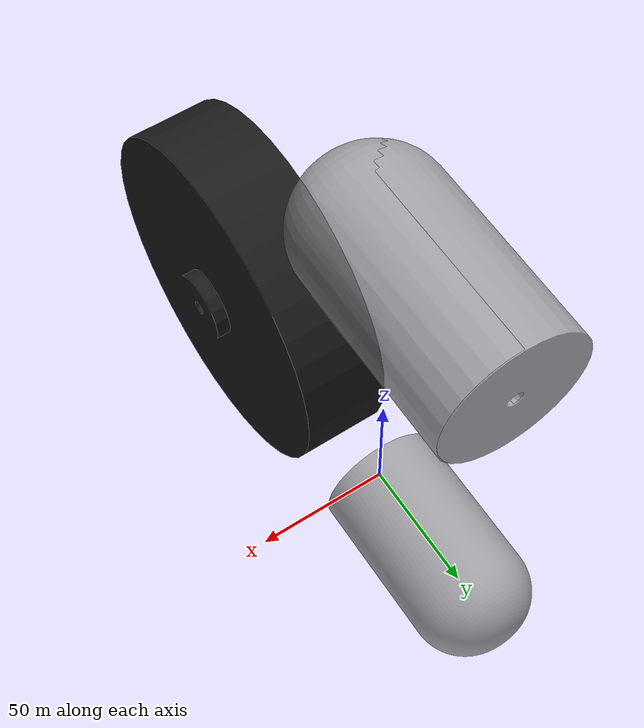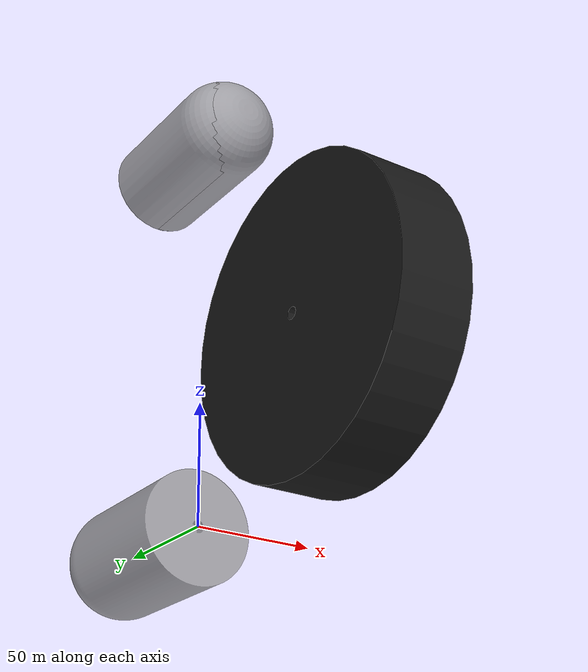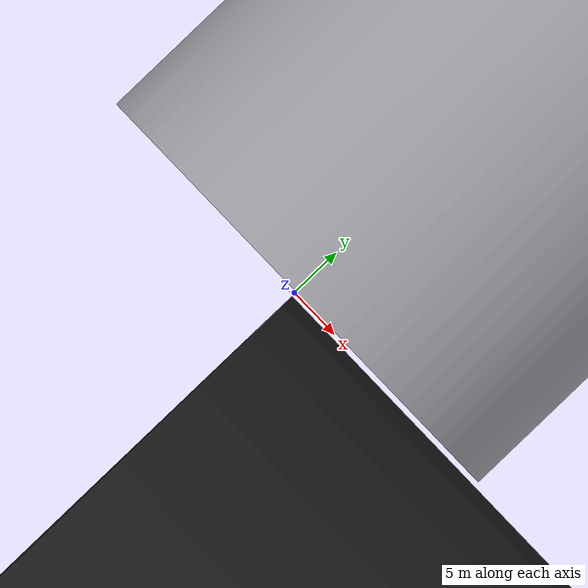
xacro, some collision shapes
<?xml version="1.0"?>
<robot name="amr_robot" xmlns:xacro="http://www.ros.org/wiki/xacro">

  <xacro:property name="base_length"    value="0.500"/>   <!-- X: 500mm STL-Z -->
  <xacro:property name="base_width"     value="0.445"/>   <!-- Y: 445mm STL-X -->
  <xacro:property name="base_height"    value="0.080"/>   <!-- Z: 80mm  STL-Y total -->
  <xacro:property name="base_mass"      value="5.130"/>

  <xacro:property name="wheel_radius"   value="0.0625"/>  <!-- 125mm/2 from STL -->
  <xacro:property name="wheel_length"   value="0.035"/>   <!-- 35mm from STL (includes hub) -->
  <xacro:property name="wheel_mass"     value="0.370"/>
  <xacro:property name="wheel_x"        value="0.0"/>
  <xacro:property name="wheel_y"        value="0.2125"/>  <!-- (455/2 - 35/2) = 212.5mm -->
  <xacro:property name="wheel_z"        value="0.0"/>

  <xacro:property name="caster_radius"  value="0.0225"/>  <!-- 45mm/2 from STL -->
  <xacro:property name="caster_mass"    value="0.163"/>
  <xacro:property name="caster_x"       value="0.1975"/>  <!-- ±197.5mm from center -->
  <xacro:property name="caster_y"       value="0.1625"/>  <!-- ±162.5mm from center -->
  <xacro:property name="caster_z"       value="-0.037"/>  <!-- ball center below base_link -->

  <!-- =========================================================
       MATERIALS
  ========================================================= -->
  <material name="aluminium">
    <color rgba="0.75 0.75 0.75 1.0"/>
  </material>
  <material name="rubber_black">
    <color rgba="0.1 0.1 0.1 1.0"/>
  </material>
  <material name="grey_plastic">
    <color rgba="0.6 0.6 0.6 0.8"/>
  </material>

  <xacro:macro name="drive_wheel" params="name y_sign">

    <link name="${name}">
      <visual>
        <origin xyz="0 0 0" rpy="0 0 0"/>
        <geometry>
          <mesh filename="package://amr_description/meshes/${name}.STL"/>
        </geometry>
        <material name="rubber_black"/>
      </visual>
      <collision>
        <!-- Cylinder primitive aligned with wheel spin axis -->
        <origin xyz="0 0 0" rpy="0 0 0"/>
        <geometry>
          <cylinder radius="${wheel_radius}" length="${wheel_length}"/>
        </geometry>
      </collision>
      <inertial>
        <origin xyz="0 0 0" rpy="0 0 0"/>
        <mass value="${wheel_mass}"/>
        <inertia ixx="0.000719" ixy="0.0" ixz="0.0"
                 iyy="0.000388" iyz="0.0"
                 izz="0.000388"/>
      </inertial>
    </link>

    <!--
      rpy="${pi/2} 0 0" rotates wheel frame so cylinder axis (STL-X)
      aligns with robot Y axis (left-right = axle direction).
      Wheel then spins about local Z → axis xyz="0 0 1"
    -->
    <joint name="${name}_joint" type="continuous">
      <parent link="base_link"/>
      <child  link="${name}"/>
      <origin xyz="${wheel_x} ${y_sign * wheel_y} ${wheel_z}"
              rpy="${pi/2} 0 0"/>
      <axis xyz="0 0 1"/>
      <dynamics damping="0.01" friction="0.1"/>
    </joint>

  </xacro:macro>

  <xacro:macro name="caster_wheel" params="name x_sign y_sign">

    <link name="${name}">
      <visual>
        <origin xyz="0 0 0" rpy="0 0 0"/>
        <geometry>
          <mesh filename="package://amr_description/meshes/${name}.STL"/>
        </geometry>
        <material name="grey_plastic"/>
      </visual>
      <collision>
        <!-- Sphere for smooth passive rolling in simulation -->
        <origin xyz="0 0 0" rpy="0 0 0"/>
        <geometry>
          <sphere radius="${caster_radius}"/>
        </geometry>
      </collision>
      <inertial>
        <origin xyz="0 0 0" rpy="0 0 0"/>
        <mass value="${caster_mass}"/>
        <inertia ixx="0.000095" ixy="0.0" ixz="0.0"
                 iyy="0.000040" iyz="0.0"
                 izz="0.000095"/>
      </inertial>
    </link>

    <!-- Fixed joint — passive caster, no actuation -->
    <joint name="${name}_joint" type="fixed">
      <parent link="base_link"/>
      <child  link="${name}"/>
      <origin xyz="${x_sign * caster_x} ${y_sign * caster_y} ${caster_z}"
              rpy="0 0 0"/>
    </joint>

  </xacro:macro>

  <!-- =========================================================
       BASE FOOTPRINT — ground projection, required by Nav2
  ========================================================= -->
  <link name="base_footprint"/>

  <joint name="base_footprint_joint" type="fixed">
    <parent link="base_footprint"/>
    <child  link="base_link"/>
    <!-- Lift base_link by wheel_radius so wheels touch ground -->
    <origin xyz="0 0 ${wheel_radius}" rpy="0 0 0"/>
  </joint>

  <!-- =========================================================
       BASE LINK
       Origin = geometric center of chassis STL bounding box
  ========================================================= -->
  <link name="base_link">
    <visual>
      <origin xyz="0 0 0" rpy="0 0 0"/>
      <geometry>
        <mesh filename="package://amr_description/meshes/base_link.STL"/>
      </geometry>
      <material name="aluminium"/>
    </visual>
    <collision>
      <!--
        Box covers full chassis including brackets
        X=500mm  Y=445mm  Z=80mm (plate 20mm + bracket zone 60mm)
      -->
      <origin xyz="0 0 0" rpy="0 0 0"/>
      <geometry>
        <box size="${base_length} ${base_width} ${base_height}"/>
      </geometry>
    </collision>
    <inertial>
      <origin xyz="0.0 -0.00104 0.0" rpy="0 0 0"/>
      <mass value="${base_mass}"/>
      <inertia ixx="0.127430" ixy="0.0" ixz="0.0"
               iyy="0.241608" iyz="0.0"
               izz="0.115733"/>
    </inertial>
  </link>

  <!-- =========================================================
       DRIVE WHEELS
  ========================================================= -->
  <xacro:drive_wheel name="wheel_left"  y_sign="1"/>
  <xacro:drive_wheel name="wheel_right" y_sign="-1"/>

  <xacro:caster_wheel name="caster_front_left"  x_sign="-1" y_sign="1"/>
  <xacro:caster_wheel name="caster_front_right" x_sign="-1" y_sign="-1"/>
  <xacro:caster_wheel name="caster_rear_left"   x_sign="1"  y_sign="1"/>
  <xacro:caster_wheel name="caster_rear_right"  x_sign="1"  y_sign="-1"/>

</robot>
